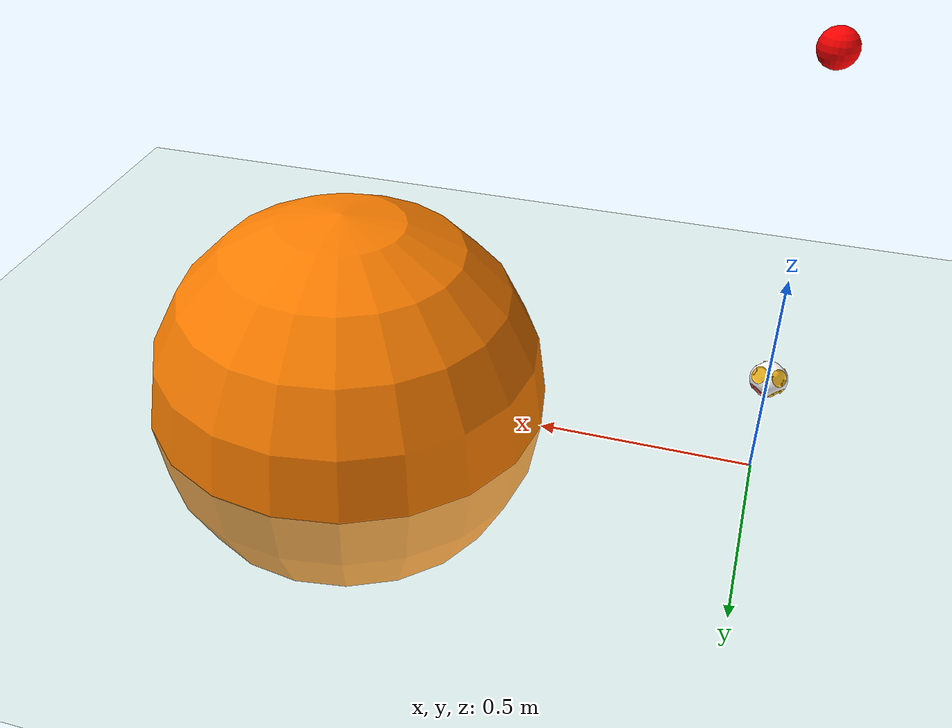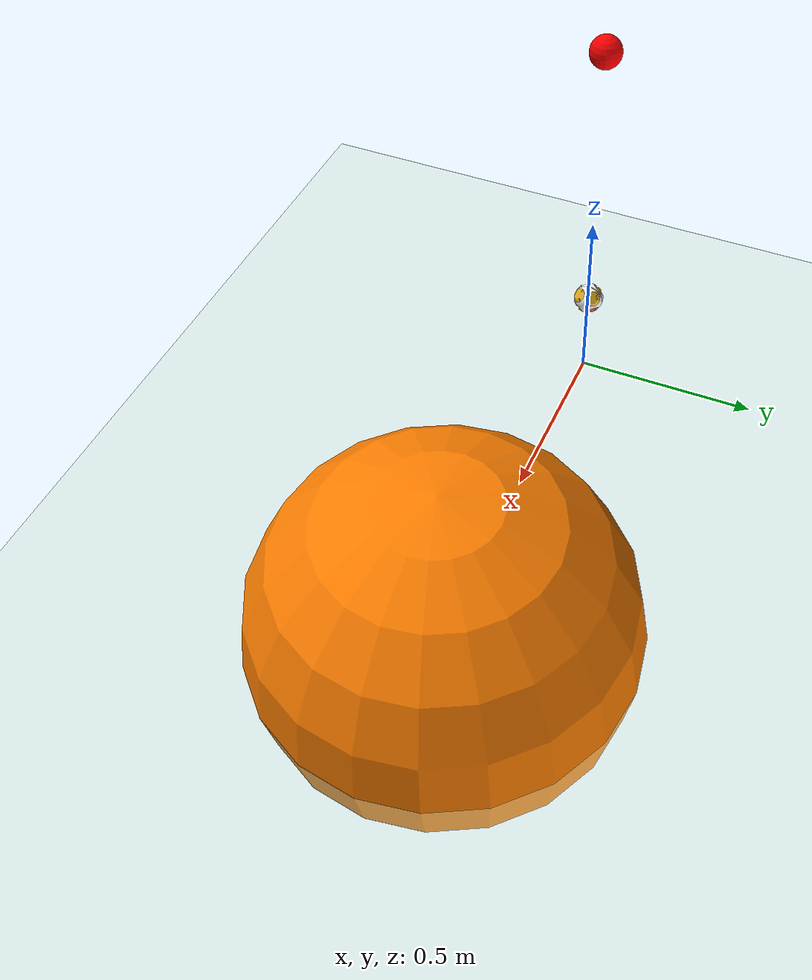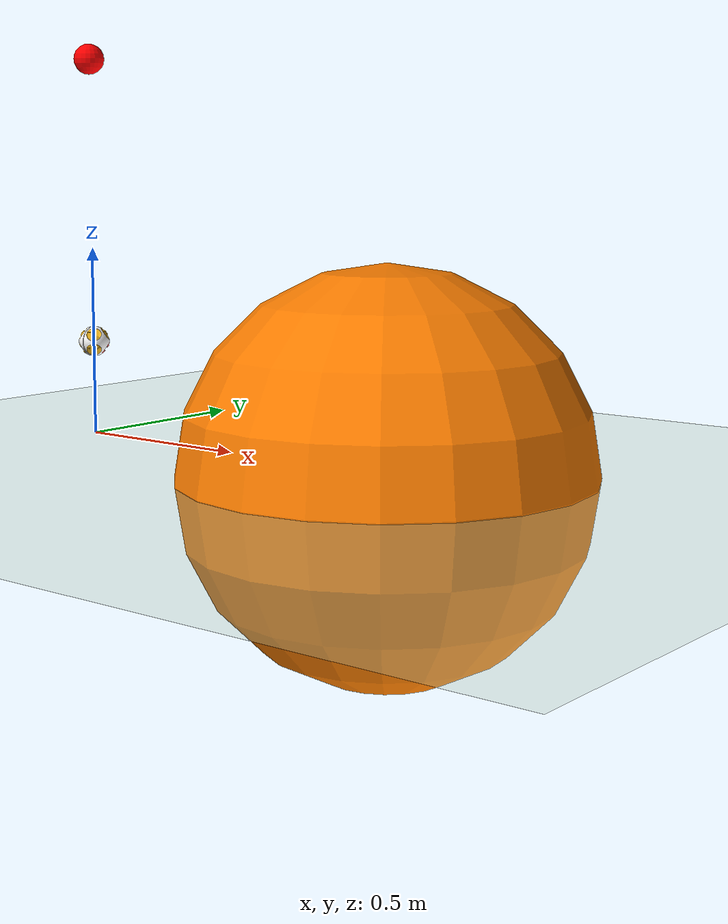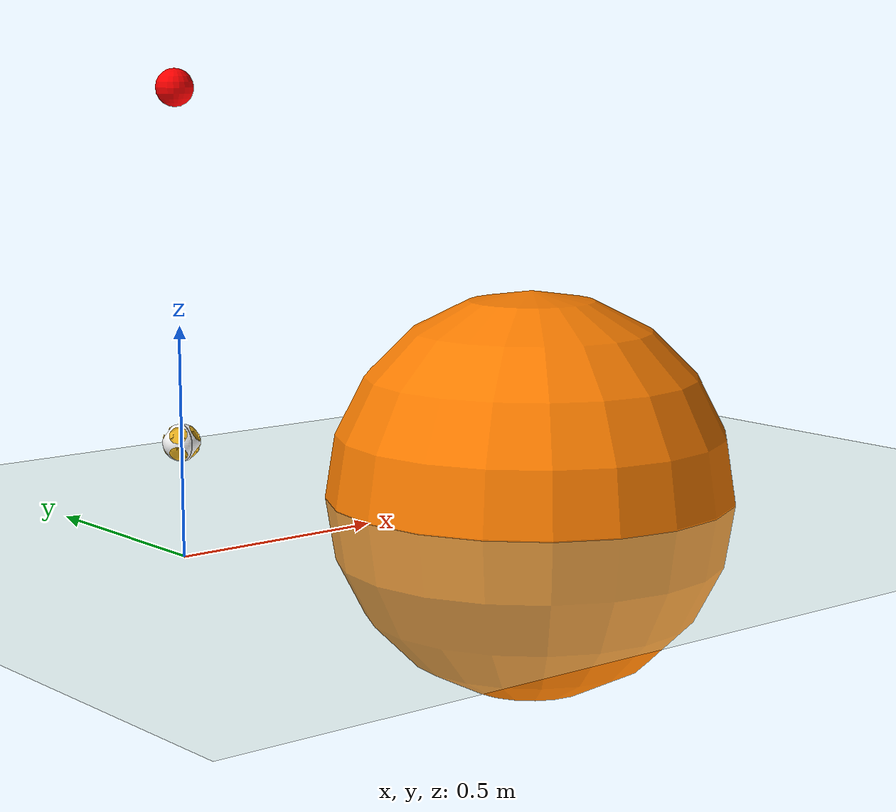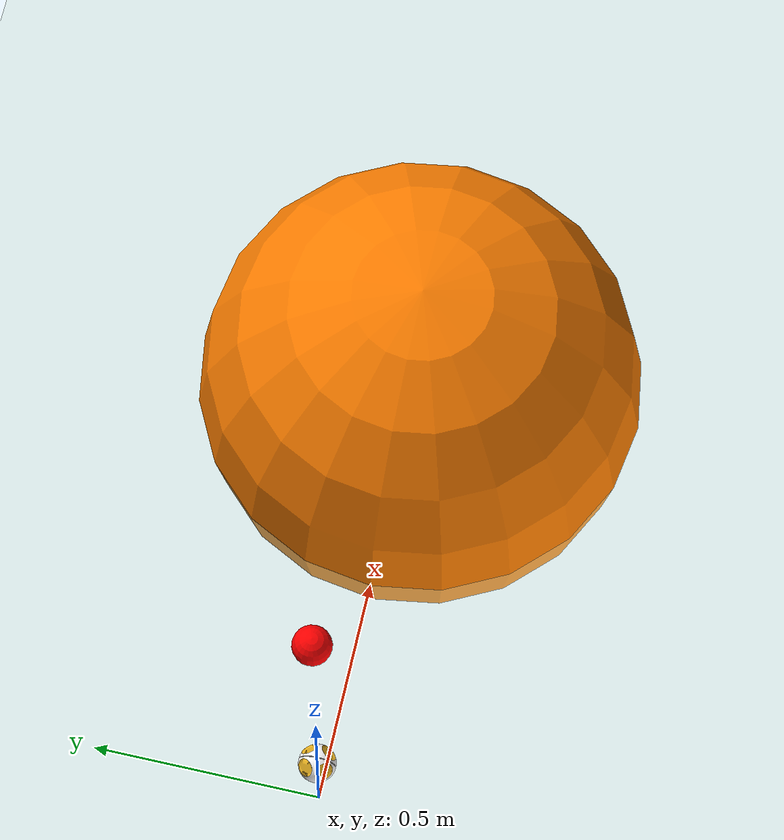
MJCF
<mujoco model="cellrobot(v1.0)">
    <compiler angle="radian" coordinate="local" meshdir="meshes" strippath="false" texturedir="textures"/>
    <option gravity="0 0 -9.81" integrator="RK4" timestep="0.001"/>

    <size nconmax="250" njmax="795" nstack="631875"/>

    <default>
        <geom conaffinity="1" condim="3" friction="1 0.5 0.5" margin="0.001"/>
        <mesh scale="1 1 1"/>
        <joint armature=".01" damping="0.2" limited="true"/>

        <default class="detacher">
            <geom conaffinity="1" condim="3" friction="1 0.5 0.5" margin="0.001" pos="0 0 0" rgba="0.93 0.71 0.13 1"
                  type="mesh"/>
        </default>
        <default class="cell">
            <geom conaffinity="1" condim="3" friction="1 0.5 0.5" margin="0.001" type="mesh"/>

        </default>

    </default>
    <asset>
        <mesh file="cell_gear/shell_gear.STL" name="cell_half_gear"/>
        <mesh file="cell_gear/detacher1.STL" name="detacher1"/>
        <mesh file="cell_gear/detacher2.STL" name="detacher2"/>
        <mesh file="cell_gear/detacher3.STL" name="detacher3"/>
        <mesh file="cell_gear/detacher4.STL" name="detacher4"/>
        <mesh file="cell_gear/circle_gear.STL" name="circle_gear"/>
        <mesh file="cell_gear/led_gear.STL" name="led_gear"/>

        <mesh file="cell_motor/shell_motor.STL" name="cell_half_motor"/>
        <mesh file="cell_motor/detacher5.STL" name="detacher5"/>
        <mesh file="cell_motor/detacher6.STL" name="detacher6"/>
        <mesh file="cell_motor/detacher7.STL" name="detacher7"/>
        <mesh file="cell_motor/detacher8.STL" name="detacher8"/>
        <mesh file="cell_motor/circle_motor.STL" name="circle_motor"/>
        <mesh file="cell_motor/led_motor.STL" name="led_motor"/>

        <texture builtin="checker" height="100" name="floor_tex" rgb1=".2 .3 .4" rgb2=".1 .2 .3" type="2d" width="100"/>
        <texture builtin="checker" height="100" name="texplane" rgb1="0 0 0" rgb2="0.8 0.8 0.8" type="2d" width="100"/>
        <texture file="block.png" gridlayout=".U..LFRB.D.." gridsize="3 4" name="texture:object" type="cube"/>

        <material name="floor_mat" reflectance="0.5" shininess="0.8" specular="0.7" texrepeat="10 10"
                  texture="floor_tex"/>
        <material name="MatPlane" reflectance="0.5" shininess="1" specular="1" texrepeat="30 30" texture="texplane"/>
        <material name="material:object" reflectance="0" shininess="0" specular="1" texture="texture:object"/>
    </asset>

    <visual>
        <map fogend="3" fogstart="1.5"/>
        <quality shadowsize="20480"/>
    </visual>

    <contact>
    </contact>

    <equality>
    </equality>

    <worldbody>

        <light cutoff="100" diffuse="1 1 1" dir="-0 0 -1.3" directional="true" exponent="1" pos="0 0 1.3"
               specular=".1 .1 .1"/>

        <camera axisangle="2 2 -2 1" mode="fixed" name="main1" pos="2 2 2" target="torso"/>

        <geom conaffinity="1" condim="3" material="MatPlane" name="floor" pos="0 0 0" rgba="0.8 0.9 0.8 1"
              size="15 15 15" type="plane"/>

        <site name="target1" pos="1 0 0" rgba="1 0.5 0 1" size="0.5 " type="sphere"/>
        <site name="target2" pos="0 0 1" rgba="1 0 0 1" size="0.04 " type="sphere"/>
        <body euler="0 1.5808 0" name="torso" pos="0  0  0.25">
            <geom name="torso_geom" pos="0  0  0" size="0.02" type="sphere"/>
            <joint armature="0" damping="0" limited="false" margin="0.01" name="root" pos="0 0 0" type="free"/>
            <body name="Link_1" pos="0 0 0" quat="1 0 0 0">
                <inertial
                        fullinertia="5.338593e-05 5.2989770000000003e-05 6.634227000000001e-05 4.3267e-07 1.1089e-06 2.2068200000000003e-06"
                        mass="0.09814" pos="-0.0004 -0.00079 0.009519999999999999"/>
                <geom class="cell" mesh="cell_half_gear" pos="0  0  0" rgba="1 1 1 1"/>
                <geom class="detacher" mesh="detacher1" rgba="1 0.42 0.42 1"/>
                <geom class="detacher" mesh="detacher2"/>
                <geom class="detacher" mesh="detacher3"/>
                <geom class="detacher" mesh="detacher4"/>
                <geom class="cell" mesh="circle_gear" pos="0  0  0" rgba="0 0 0 1"/>
                <geom class="cell" mesh="led_gear" pos="0  0  0" rgba="0.53 0.81 0.98 1"/>
                <joint axis="0 0 1" limited="true" name="joint:cell0" pos="0 0 -0.001" range="-3.14159 3.14159"/>
                <body name="Link_2" pos="0 0 0" quat="1 0 0 0">
                    <inertial
                            fullinertia="5.338593e-05 5.2989770000000003e-05 6.634227000000001e-05 4.3267e-07 1.1089e-06 2.2068200000000003e-06"
                            mass="0.09814" pos="-0.0004 -0.00079 0.009519999999999999"/>
                    <geom class="cell" mesh="cell_half_motor" pos="0  0  0" rgba="1 1 1 1"/>
                    <geom class="detacher" mesh="detacher5"/>
                    <geom class="detacher" mesh="detacher6"/>
                    <geom class="detacher" mesh="detacher7"/>
                    <geom class="detacher" mesh="detacher8"/>
                    <geom class="cell" mesh="circle_motor" pos="0  0  0" rgba="0 0 0 1"/>
                    <geom class="cell" mesh="led_motor" pos="0  0  0" rgba="0.53 0.81 0.98 1"/>
                </body>
                <geom class="cell" mesh="cell_half_motor" pos="0  0  0" rgba="1 1 1 1"/>
                <geom class="detacher" mesh="detacher5"/>
                <geom class="detacher" mesh="detacher6"/>
                <geom class="detacher" mesh="detacher7"/>
                <geom class="detacher" mesh="detacher8"/>
                <geom class="cell" mesh="circle_motor" pos="0  0  0" rgba="0 0 0 1"/>
                <geom class="cell" mesh="led_motor" pos="0  0  0" rgba="0.53 0.81 0.98 1"/>
                <joint axis="0 0 1" limited="true" name="joint:cell1" pos="0 0 -0.001" range="-3.14159 3.14159"/>
                <body name="Link_3" pos="0 0 0" quat="1 0 0 0">
                    <inertial
                            fullinertia="5.338593e-05 5.2989770000000003e-05 6.634227000000001e-05 4.3267e-07 1.1089e-06 2.2068200000000003e-06"
                            mass="0.09814" pos="-0.0004 -0.00079 0.009519999999999999"/>
                    <geom class="cell" mesh="cell_half_motor" pos="0  0  0" rgba="1 1 1 1"/>
                    <geom class="detacher" mesh="detacher5"/>
                    <geom class="detacher" mesh="detacher6"/>
                    <geom class="detacher" mesh="detacher7"/>
                    <geom class="detacher" mesh="detacher8"/>
                    <geom class="cell" mesh="circle_motor" pos="0  0  0" rgba="0 0 0 1"/>
                    <geom class="cell" mesh="led_motor" pos="0  0  0" rgba="0.53 0.81 0.98 1"/>
                </body>
            </body>
        </body>
    </worldbody>

    <actuator>

        <motor ctrllimited="true" ctrlrange="-1.0 1.0" gear="200" joint="joint:cell0"/>
        <motor ctrllimited="true" ctrlrange="-1.0 1.0" gear="200" joint="joint:cell1"/>
    </actuator>

    <sensor>
        <torque name="cell0_toq" site="Link_2"/>
    </sensor>
</mujoco>
